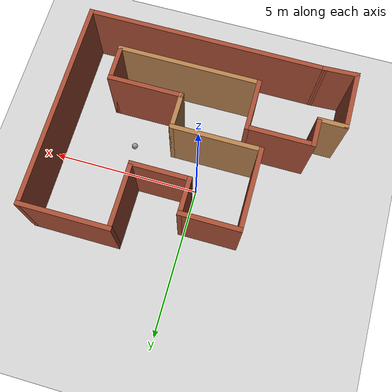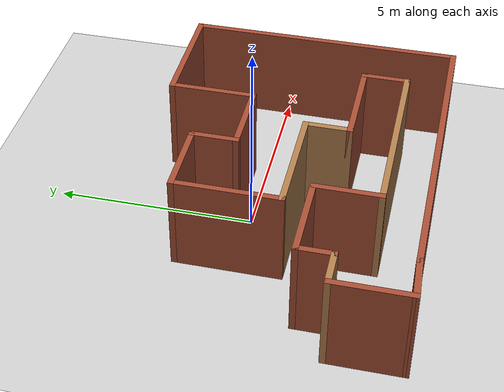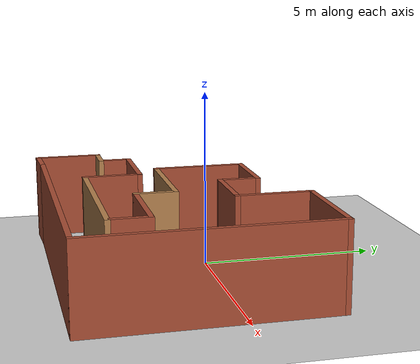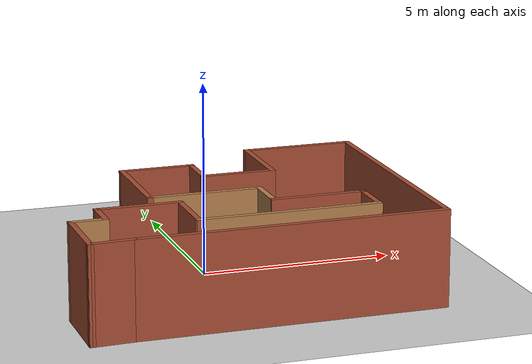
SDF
<sdf version="1.7">
 <world name="default">
  <light name="sun" type="directional">
   <pose>0 0 10 0 -0 0</pose>
   <diffuse>0.8 0.8 0.8 1</diffuse>
   <specular>0.2 0.2 0.2 1</specular>
   <attenuation>
    <range>1000</range>
    <constant>0.9</constant>
    <linear>0.01</linear>
    <quadratic>0.001</quadratic>
   </attenuation>
   <direction>-0.5 0.1 -0.9</direction>
   <spot><inner_angle>0</inner_angle><outer_angle>0</outer_angle><falloff>0</falloff></spot>
  </light>
  <model name="ground_plane">
   <static>1</static>
   <link name="link">
    <collision name="collision">
     <geometry><plane><normal>0 0 1</normal><size>100 100</size></plane></geometry>
     <surface>
      <contact><collide_bitmask>65535</collide_bitmask></contact>
      <friction><ode><mu>100</mu><mu2>50</mu2></ode></friction>
     </surface>
    </collision>
    <visual name="visual">
     <cast_shadows>0</cast_shadows>
     <geometry><plane><normal>0 0 1</normal><size>100 100</size></plane></geometry>
     <material>
      <script><uri>file://media/materials/scripts/gazebo.material</uri><name>Gazebo/Grey</name></script>
     </material>
    </visual>
   </link>
  </model>
  <gravity>0 0 -9.8</gravity>
  <magnetic_field>6e-06 2.3e-05 -4.2e-05</magnetic_field>
  <atmosphere type="adiabatic"/>
  <physics type="ode">
   <max_step_size>0.001</max_step_size>
   <real_time_factor>1</real_time_factor>
   <real_time_update_rate>1000</real_time_update_rate>
  </physics>
  <scene><ambient>0.4 0.4 0.4 1</ambient><background>0.7 0.7 0.7 1</background><shadows>1</shadows></scene>
  <spherical_coordinates>
   <surface_model>EARTH_WGS84</surface_model>
   <latitude_deg>0</latitude_deg>
   <longitude_deg>0</longitude_deg>
   <elevation>0</elevation>
   <heading_deg>0</heading_deg>
  </spherical_coordinates>
  <model name="ball_world">
   <pose>0.368259 -0.941741 0 0 -0 0</pose>
   <link name="Wall_0">
    <collision name="Wall_0_Collision">
     <geometry><box><size>8 0.15 2.5</size></box></geometry>
     <pose>0 0 1.25 0 -0 0</pose>
    </collision>
    <visual name="Wall_0_Visual">
     <pose>0 0 1.25 0 -0 0</pose>
     <geometry><box><size>8 0.15 2.5</size></box></geometry>
     <material>
      <script><uri>file://media/materials/scripts/gazebo.material</uri><name>Gazebo/Bricks</name></script>
      <ambient>1 1 1 1</ambient>
     </material>
     <meta><layer>0</layer></meta>
    </visual>
    <pose>0.526741 -3.39826 0 0 -0 0</pose>
   </link>
   <link name="Wall_1">
    <collision name="Wall_1_Collision">
     <geometry><box><size>7 0.15 2.5</size></box></geometry>
     <pose>0 0 1.25 0 -0 0</pose>
    </collision>
    <visual name="Wall_1_Visual">
     <pose>0 0 1.25 0 -0 0</pose>
     <geometry><box><size>7 0.15 2.5</size></box></geometry>
     <material>
      <script><uri>file://media/materials/scripts/gazebo.material</uri><name>Gazebo/Bricks</name></script>
      <ambient>1 1 1 1</ambient>
     </material>
     <meta><layer>0</layer></meta>
    </visual>
    <pose>4.45174 0.026741 0 0 -0 1.5708</pose>
   </link>
   <link name="Wall_10">
    <collision name="Wall_10_Collision">
     <geometry><box><size>2.5 0.15 2.5</size></box></geometry>
     <pose>0 0 1.25 0 -0 0</pose>
    </collision>
    <visual name="Wall_10_Visual">
     <pose>0 0 1.25 0 -0 0</pose>
     <geometry><box><size>2.5 0.15 2.5</size></box></geometry>
     <material>
      <script><uri>file://media/materials/scripts/gazebo.material</uri><name>Gazebo/Bricks</name></script>
      <ambient>1 1 1 1</ambient>
     </material>
     <meta><layer>0</layer></meta>
    </visual>
    <pose>1.92674 -1.24826 0 0 -0 0</pose>
   </link>
   <link name="Wall_11">
    <collision name="Wall_11_Collision">
     <geometry><box><size>1.25 0.15 2.5</size></box></geometry>
     <pose>0 0 1.25 0 -0 0</pose>
    </collision>
    <visual name="Wall_11_Visual">
     <pose>0 0 1.25 0 -0 0</pose>
     <geometry><box><size>1.25 0.15 2.5</size></box></geometry>
     <material>
      <script><uri>file://media/materials/scripts/gazebo.material</uri><name>Gazebo/Bricks</name></script>
      <ambient>1 1 1 1</ambient>
     </material>
     <meta><layer>0</layer></meta>
    </visual>
    <pose>3.10174 -1.79826 0 0 -0 -1.5708</pose>
   </link>
   <link name="Wall_12">
    <collision name="Wall_12_Collision">
     <geometry><box><size>4.75 0.15 2.5</size></box></geometry>
     <pose>0 0 1.25 0 -0 0</pose>
    </collision>
    <visual name="Wall_12_Visual">
     <pose>0 0 1.25 0 -0 0</pose>
     <geometry><box><size>4.75 0.15 2.5</size></box></geometry>
     <material>
      <script><uri>file://media/materials/scripts/gazebo.material</uri><name>Gazebo/Wood</name></script>
      <ambient>1 1 1 1</ambient>
     </material>
     <meta><layer>0</layer></meta>
    </visual>
    <pose>0.801741 -2.34826 0 0 -0 3.14159</pose>
   </link>
   <link name="Wall_13">
    <collision name="Wall_13_Collision">
     <geometry><box><size>1.75 0.15 2.5</size></box></geometry>
     <pose>0 0 1.25 0 -0 0</pose>
    </collision>
    <visual name="Wall_13_Visual">
     <pose>0 0 1.25 0 -0 0</pose>
     <geometry><box><size>1.75 0.15 2.5</size></box></geometry>
     <material>
      <script><uri>file://media/materials/scripts/gazebo.material</uri><name>Gazebo/Bricks</name></script>
      <ambient>1 1 1 1</ambient>
     </material>
     <meta><layer>0</layer></meta>
    </visual>
    <pose>-1.49826 -1.54826 0 0 -0 1.5708</pose>
   </link>
   <link name="Wall_14">
    <collision name="Wall_14_Collision">
     <geometry><box><size>2.25 0.15 2.5</size></box></geometry>
     <pose>0 0 1.25 0 -0 0</pose>
    </collision>
    <visual name="Wall_14_Visual">
     <pose>0 0 1.25 0 -0 0</pose>
     <geometry><box><size>2.25 0.15 2.5</size></box></geometry>
     <material>
      <script><uri>file://media/materials/scripts/gazebo.material</uri><name>Gazebo/Bricks</name></script>
      <ambient>1 1 1 1</ambient>
     </material>
     <meta><layer>0</layer></meta>
    </visual>
    <pose>-2.54826 -0.748259 0 0 -0 3.14159</pose>
   </link>
   <link name="Wall_15">
    <collision name="Wall_15_Collision">
     <geometry><box><size>1 0.15 2.5</size></box></geometry>
     <pose>0 0 1.25 0 -0 0</pose>
    </collision>
    <visual name="Wall_15_Visual">
     <pose>0 0 1.25 0 -0 0</pose>
     <geometry><box><size>1 0.15 2.5</size></box></geometry>
     <material>
      <script><uri>file://media/materials/scripts/gazebo.material</uri><name>Gazebo/Bricks</name></script>
      <ambient>1 1 1 1</ambient>
     </material>
     <meta><layer>0</layer></meta>
    </visual>
    <pose>-3.59826 -1.17326 0 0 -0 -1.5708</pose>
   </link>
   <link name="Wall_16">
    <collision name="Wall_16_Collision">
     <geometry><box><size>1 0.15 2.5</size></box></geometry>
     <pose>0 0 1.25 0 -0 0</pose>
    </collision>
    <visual name="Wall_16_Visual">
     <pose>0 0 1.25 0 -0 0</pose>
     <geometry><box><size>1 0.15 2.5</size></box></geometry>
     <material>
      <script><uri>file://media/materials/scripts/gazebo.material</uri><name>Gazebo/Wood</name></script>
      <ambient>1 1 1 1</ambient>
     </material>
     <meta><layer>0</layer></meta>
    </visual>
    <pose>-4.02326 -1.59826 0 0 -0 3.14159</pose>
   </link>
   <link name="Wall_17">
    <collision name="Wall_17_Collision">
     <geometry><box><size>2 0.15 2.5</size></box></geometry>
     <pose>0 0 1.25 0 -0 0</pose>
    </collision>
    <visual name="Wall_17_Visual">
     <pose>0 0 1.25 0 -0 0</pose>
     <geometry><box><size>2 0.15 2.5</size></box></geometry>
     <material>
      <script><uri>file://media/materials/scripts/gazebo.material</uri><name>Gazebo/Bricks</name></script>
      <ambient>1 1 1 1</ambient>
     </material>
     <meta><layer>0</layer></meta>
    </visual>
    <pose>-4.44826 -2.52326 0 0 -0 -1.5708</pose>
   </link>
   <link name="Wall_18">
    <collision name="Wall_18_Collision">
     <geometry><box><size>1.20119 0.15 2.5</size></box></geometry>
     <pose>0 0 1.25 0 -0 0</pose>
    </collision>
    <visual name="Wall_18_Visual">
     <pose>0 0 1.25 0 -0 0</pose>
     <geometry><box><size>1.20119 0.15 2.5</size></box></geometry>
     <material>
      <script><uri>file://media/materials/scripts/gazebo.material</uri><name>Gazebo/Bricks</name></script>
      <ambient>1 1 1 1</ambient>
     </material>
     <meta><layer>0</layer></meta>
    </visual>
    <pose>-3.92326 -3.42326 0 0 -0 0.047583</pose>
   </link>
   <link name="Wall_2">
    <collision name="Wall_2_Collision">
     <geometry><box><size>3 0.15 2.5</size></box></geometry>
     <pose>0 0 1.25 0 -0 0</pose>
    </collision>
    <visual name="Wall_2_Visual">
     <pose>0 0 1.25 0 -0 0</pose>
     <geometry><box><size>3 0.15 2.5</size></box></geometry>
     <material>
      <script><uri>file://media/materials/scripts/gazebo.material</uri><name>Gazebo/Bricks</name></script>
      <ambient>1 1 1 1</ambient>
     </material>
     <meta><layer>0</layer></meta>
    </visual>
    <pose>3.02674 3.45174 0 0 -0 3.14159</pose>
   </link>
   <link name="Wall_3">
    <collision name="Wall_3_Collision">
     <geometry><box><size>2.25 0.15 2.5</size></box></geometry>
     <pose>0 0 1.25 0 -0 0</pose>
    </collision>
    <visual name="Wall_3_Visual">
     <pose>0 0 1.25 0 -0 0</pose>
     <geometry><box><size>2.25 0.15 2.5</size></box></geometry>
     <material>
      <script><uri>file://media/materials/scripts/gazebo.material</uri><name>Gazebo/Bricks</name></script>
      <ambient>1 1 1 1</ambient>
     </material>
     <meta><layer>0</layer></meta>
    </visual>
    <pose>1.60174 2.40174 0 0 -0 -1.5708</pose>
   </link>
   <link name="Wall_4">
    <collision name="Wall_4_Collision">
     <geometry><box><size>2 0.15 2.5</size></box></geometry>
     <pose>0 0 1.25 0 -0 0</pose>
    </collision>
    <visual name="Wall_4_Visual">
     <pose>0 0 1.25 0 -0 0</pose>
     <geometry><box><size>2 0.15 2.5</size></box></geometry>
     <material>
      <script><uri>file://media/materials/scripts/gazebo.material</uri><name>Gazebo/Bricks</name></script>
      <ambient>1 1 1 1</ambient>
     </material>
     <meta><layer>0</layer></meta>
    </visual>
    <pose>0.676741 1.35174 0 0 -0 3.14159</pose>
   </link>
   <link name="Wall_5">
    <collision name="Wall_5_Collision">
     <geometry><box><size>1.25 0.15 2.5</size></box></geometry>
     <pose>0 0 1.25 0 -0 0</pose>
    </collision>
    <visual name="Wall_5_Visual">
     <pose>0 0 1.25 0 -0 0</pose>
     <geometry><box><size>1.25 0.15 2.5</size></box></geometry>
     <material>
      <script><uri>file://media/materials/scripts/gazebo.material</uri><name>Gazebo/Bricks</name></script>
      <ambient>1 1 1 1</ambient>
     </material>
     <meta><layer>0</layer></meta>
    </visual>
    <pose>-0.248259 1.90174 0 0 -0 1.5708</pose>
   </link>
   <link name="Wall_6">
    <collision name="Wall_6_Collision">
     <geometry><box><size>2 0.15 2.5</size></box></geometry>
     <pose>0 0 1.25 0 -0 0</pose>
    </collision>
    <visual name="Wall_6_Visual">
     <pose>0 0 1.25 0 -0 0</pose>
     <geometry><box><size>2 0.15 2.5</size></box></geometry>
     <material>
      <script><uri>file://media/materials/scripts/gazebo.material</uri><name>Gazebo/Bricks</name></script>
      <ambient>1 1 1 1</ambient>
     </material>
     <meta><layer>0</layer></meta>
    </visual>
    <pose>-1.17326 2.45174 0 0 -0 3.14159</pose>
   </link>
   <link name="Wall_7">
    <collision name="Wall_7_Collision">
     <geometry><box><size>2.75 0.15 2.5</size></box></geometry>
     <pose>0 0 1.25 0 -0 0</pose>
    </collision>
    <visual name="Wall_7_Visual">
     <pose>0 0 1.25 0 -0 0</pose>
     <geometry><box><size>2.75 0.15 2.5</size></box></geometry>
     <material>
      <script><uri>file://media/materials/scripts/gazebo.material</uri><name>Gazebo/Bricks</name></script>
      <ambient>1 1 1 1</ambient>
     </material>
     <meta><layer>0</layer></meta>
    </visual>
    <pose>-2.09826 1.15174 0 0 -0 -1.5708</pose>
   </link>
   <link name="Wall_8">
    <collision name="Wall_8_Collision">
     <geometry><box><size>3 0.15 2.5</size></box></geometry>
     <pose>0 0 1.25 0 -0 0</pose>
    </collision>
    <visual name="Wall_8_Visual">
     <pose>0 0 1.25 0 -0 0</pose>
     <geometry><box><size>3 0.15 2.5</size></box></geometry>
     <material>
      <script><uri>file://media/materials/scripts/gazebo.material</uri><name>Gazebo/Wood</name></script>
      <ambient>1 1 1 1</ambient>
     </material>
     <meta><layer>0</layer></meta>
    </visual>
    <pose>-0.673259 -0.148259 0 0 -0 0</pose>
   </link>
   <link name="Wall_9">
    <collision name="Wall_9_Collision">
     <geometry><box><size>1.25 0.15 2.5</size></box></geometry>
     <pose>0 0 1.25 0 -0 0</pose>
    </collision>
    <visual name="Wall_9_Visual">
     <pose>0 0 1.25 0 -0 0</pose>
     <geometry><box><size>1.25 0.15 2.5</size></box></geometry>
     <material>
      <script><uri>file://media/materials/scripts/gazebo.material</uri><name>Gazebo/Wood</name></script>
      <ambient>1 1 1 1</ambient>
     </material>
     <meta><layer>0</layer></meta>
    </visual>
    <pose>0.751741 -0.698259 0 0 -0 -1.5708</pose>
   </link>
   <static>1</static>
  </model>
  <model name="white_ball">
   <link name="link_0">
    <inertial>
     <mass>1</mass>
     <inertia><ixx>0.1</ixx><ixy>0</ixy><ixz>0</ixz><iyy>0.1</iyy><iyz>0</iyz><izz>0.1</izz></inertia>
    </inertial>
    <visual name="visual">
     <geometry><sphere><radius>0.1</radius></sphere></geometry>
     <material>
      <lighting>1</lighting>
      <script><uri>file://media/materials/scripts/gazebo.material</uri><name>Gazebo/Grey</name></script>
      <shader type="pixel"><normal_map>__default__</normal_map></shader>
      <ambient>1 1 1 1</ambient>
      <diffuse>1 1 1 1</diffuse>
      <specular>1 1 1 1</specular>
      <emissive>1 1 1 1</emissive>
     </material>
    </visual>
    <collision name="collision">
     <geometry><sphere><radius>0.1</radius></sphere></geometry>
     <surface>
      <friction>
       <ode><mu>1</mu><mu2>1</mu2><fdir1>0 0 0</fdir1><slip1>0</slip1><slip2>0</slip2></ode>
       <torsional>
        <coefficient>1</coefficient>
        <patch_radius>0</patch_radius>
        <surface_radius>0</surface_radius>
        <use_patch_radius>1</use_patch_radius>
        <ode><slip>0</slip></ode>
       </torsional>
      </friction>
      <bounce><restitution_coefficient>0</restitution_coefficient><threshold>1e+06</threshold></bounce>
      <contact>
       <collide_without_contact>0</collide_without_contact>
       <collide_without_contact_bitmask>1</collide_without_contact_bitmask>
       <collide_bitmask>1</collide_bitmask>
       <ode>
        <soft_cfm>0</soft_cfm>
        <soft_erp>0.2</soft_erp>
        <kp>1e+13</kp>
        <kd>1</kd>
        <max_vel>0.01</max_vel>
        <min_depth>0</min_depth>
       </ode>
       <bullet>
        <split_impulse>1</split_impulse>
        <split_impulse_penetration_threshold>-0.01</split_impulse_penetration_threshold>
        <soft_cfm>0</soft_cfm>
        <soft_erp>0.2</soft_erp>
        <kp>1e+13</kp>
        <kd>1</kd>
       </bullet>
      </contact>
     </surface>
    </collision>
   </link>
   <static>0</static>
   <pose>2.41046 -0.870082 0.5 0 -0 0</pose>
  </model>
 </world>
</sdf>
